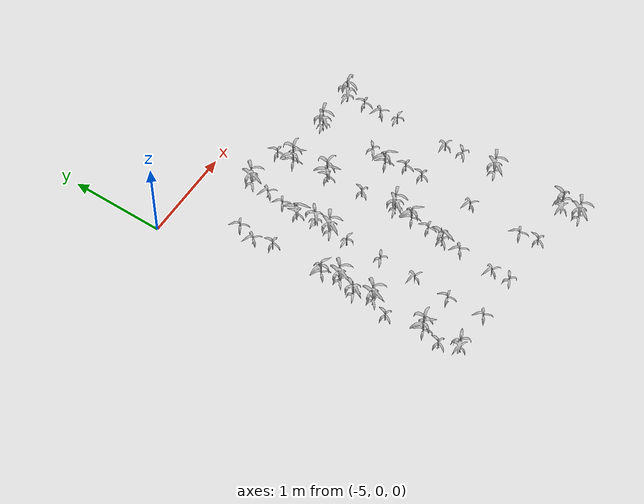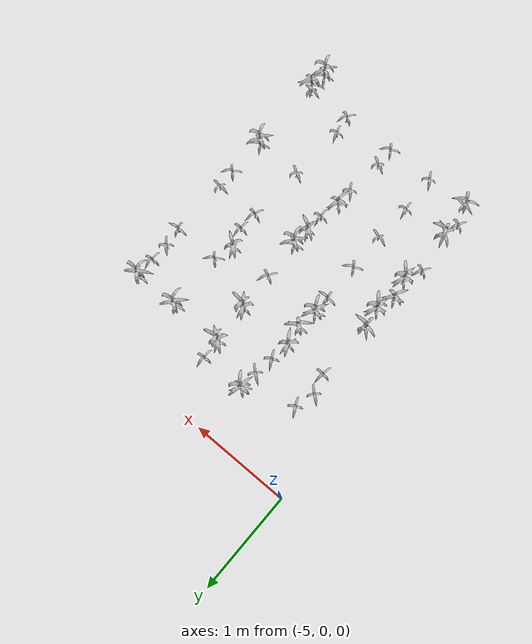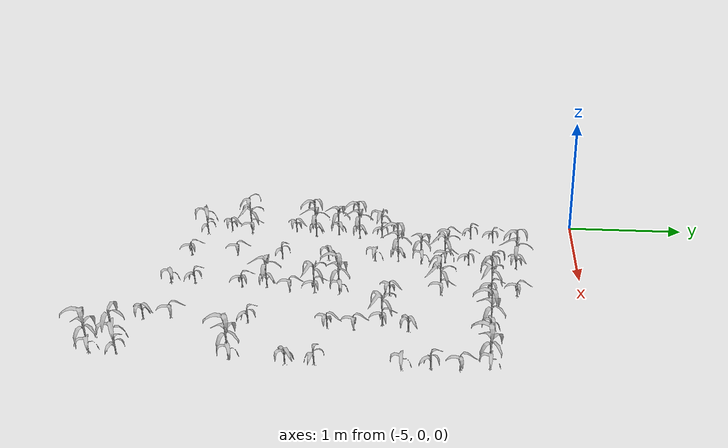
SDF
<sdf version="1.7">
 <world name="default">
  <model name="maize_-4.554123064080819_-3.2399999999999998">
   <static>1</static>
   <link name="link">
    <inertial>
     <mass>0.2</mass>
     <inertia>
      <ixx>0.166667</ixx>
      <ixy>0</ixy>
      <ixz>0</ixz>
      <iyy>0.166667</iyy>
      <iyz>0</iyz>
      <izz>0.166667</izz>
     </inertia>
    </inertial>
    <collision name="collision">
     <geometry><mesh><uri>model://corn_4/meshes/corn.dae</uri><scale>0.25 0.25 0.25</scale></mesh></geometry>
     <surface>
      <friction><ode><mu>0</mu><mu2>0</mu2></ode></friction>
      <contact><ode><kp>0</kp><kd>0</kd><max_vel>0</max_vel><min_depth>0.002</min_depth></ode></contact>
     </surface>
    </collision>
    <visual name="visual">
     <geometry><mesh><uri>model://corn_4/meshes/corn.dae</uri><scale>0.25 0.25 0.25</scale></mesh></geometry>
    </visual>
    <velocity_decay><linear>0</linear><angular>0</angular></velocity_decay>
   </link>
   <pose>-4.55412 -3.24 0.05 0 -0 2.99477</pose>
  </model>
  <model name="maize_-4.629698592727202_-3.045">
   <static>1</static>
   <link name="link">
    <inertial>
     <mass>0.2</mass>
     <inertia>
      <ixx>0.166667</ixx>
      <ixy>0</ixy>
      <ixz>0</ixz>
      <iyy>0.166667</iyy>
      <iyz>0</iyz>
      <izz>0.166667</izz>
     </inertia>
    </inertial>
    <collision name="collision">
     <geometry><mesh><uri>model://corn_3/meshes/corn.dae</uri><scale>0.25 0.25 0.25</scale></mesh></geometry>
     <surface>
      <friction><ode><mu>0</mu><mu2>0</mu2></ode></friction>
      <contact><ode><kp>0</kp><kd>0</kd><max_vel>0</max_vel><min_depth>0.002</min_depth></ode></contact>
     </surface>
    </collision>
    <visual name="visual">
     <geometry><mesh><uri>model://corn_3/meshes/corn.dae</uri><scale>0.25 0.25 0.25</scale></mesh></geometry>
    </visual>
    <velocity_decay><linear>0</linear><angular>0</angular></velocity_decay>
   </link>
   <pose>-4.6297 -3.045 0.05 0 -0 1.2091</pose>
  </model>
  <model name="maize_-4.592387539115253_-2.8499999999999996">
   <static>1</static>
   <link name="link">
    <inertial>
     <mass>0.2</mass>
     <inertia>
      <ixx>0.166667</ixx>
      <ixy>0</ixy>
      <ixz>0</ixz>
      <iyy>0.166667</iyy>
      <iyz>0</iyz>
      <izz>0.166667</izz>
     </inertia>
    </inertial>
    <collision name="collision">
     <geometry><mesh><uri>model://corn_5/meshes/corn.dae</uri><scale>0.25 0.25 0.25</scale></mesh></geometry>
     <surface>
      <friction><ode><mu>0</mu><mu2>0</mu2></ode></friction>
      <contact><ode><kp>0</kp><kd>0</kd><max_vel>0</max_vel><min_depth>0.002</min_depth></ode></contact>
     </surface>
    </collision>
    <visual name="visual">
     <geometry><mesh><uri>model://corn_5/meshes/corn.dae</uri><scale>0.25 0.25 0.25</scale></mesh></geometry>
    </visual>
    <velocity_decay><linear>0</linear><angular>0</angular></velocity_decay>
   </link>
   <pose>-4.59239 -2.85 0.05 0 -0 1.94751</pose>
  </model>
  <model name="maize_-4.649728887082645_-2.46">
   <static>1</static>
   <link name="link">
    <inertial>
     <mass>0.2</mass>
     <inertia>
      <ixx>0.166667</ixx>
      <ixy>0</ixy>
      <ixz>0</ixz>
      <iyy>0.166667</iyy>
      <iyz>0</iyz>
      <izz>0.166667</izz>
     </inertia>
    </inertial>
    <collision name="collision">
     <geometry><mesh><uri>model://corn_3/meshes/corn.dae</uri><scale>0.25 0.25 0.25</scale></mesh></geometry>
     <surface>
      <friction><ode><mu>0</mu><mu2>0</mu2></ode></friction>
      <contact><ode><kp>0</kp><kd>0</kd><max_vel>0</max_vel><min_depth>0.002</min_depth></ode></contact>
     </surface>
    </collision>
    <visual name="visual">
     <geometry><mesh><uri>model://corn_3/meshes/corn.dae</uri><scale>0.25 0.25 0.25</scale></mesh></geometry>
    </visual>
    <velocity_decay><linear>0</linear><angular>0</angular></velocity_decay>
   </link>
   <pose>-4.64973 -2.46 0.05 0 -0 1.15496</pose>
  </model>
  <model name="maize_-4.5740912913957406_-2.2649999999999997">
   <static>1</static>
   <link name="link">
    <inertial>
     <mass>0.2</mass>
     <inertia>
      <ixx>0.166667</ixx>
      <ixy>0</ixy>
      <ixz>0</ixz>
      <iyy>0.166667</iyy>
      <iyz>0</iyz>
      <izz>0.166667</izz>
     </inertia>
    </inertial>
    <collision name="collision">
     <geometry><mesh><uri>model://corn_5/meshes/corn.dae</uri><scale>0.25 0.25 0.25</scale></mesh></geometry>
     <surface>
      <friction><ode><mu>0</mu><mu2>0</mu2></ode></friction>
      <contact><ode><kp>0</kp><kd>0</kd><max_vel>0</max_vel><min_depth>0.002</min_depth></ode></contact>
     </surface>
    </collision>
    <visual name="visual">
     <geometry><mesh><uri>model://corn_5/meshes/corn.dae</uri><scale>0.25 0.25 0.25</scale></mesh></geometry>
    </visual>
    <velocity_decay><linear>0</linear><angular>0</angular></velocity_decay>
   </link>
   <pose>-4.57409 -2.265 0.05 0 -0 0.887421</pose>
  </model>
  <model name="maize_-4.6180942505716365_-2.07">
   <static>1</static>
   <link name="link">
    <inertial>
     <mass>0.2</mass>
     <inertia>
      <ixx>0.166667</ixx>
      <ixy>0</ixy>
      <ixz>0</ixz>
      <iyy>0.166667</iyy>
      <iyz>0</iyz>
      <izz>0.166667</izz>
     </inertia>
    </inertial>
    <collision name="collision">
     <geometry><mesh><uri>model://corn_4/meshes/corn.dae</uri><scale>0.25 0.25 0.25</scale></mesh></geometry>
     <surface>
      <friction><ode><mu>0</mu><mu2>0</mu2></ode></friction>
      <contact><ode><kp>0</kp><kd>0</kd><max_vel>0</max_vel><min_depth>0.002</min_depth></ode></contact>
     </surface>
    </collision>
    <visual name="visual">
     <geometry><mesh><uri>model://corn_4/meshes/corn.dae</uri><scale>0.25 0.25 0.25</scale></mesh></geometry>
    </visual>
    <velocity_decay><linear>0</linear><angular>0</angular></velocity_decay>
   </link>
   <pose>-4.61809 -2.07 0.05 0 -0 0.544141</pose>
  </model>
  <model name="maize_-4.561572440521808_-1.8749999999999996">
   <static>1</static>
   <link name="link">
    <inertial>
     <mass>0.2</mass>
     <inertia>
      <ixx>0.166667</ixx>
      <ixy>0</ixy>
      <ixz>0</ixz>
      <iyy>0.166667</iyy>
      <iyz>0</iyz>
      <izz>0.166667</izz>
     </inertia>
    </inertial>
    <collision name="collision">
     <geometry><mesh><uri>model://corn_5/meshes/corn.dae</uri><scale>0.25 0.25 0.25</scale></mesh></geometry>
     <surface>
      <friction><ode><mu>0</mu><mu2>0</mu2></ode></friction>
      <contact><ode><kp>0</kp><kd>0</kd><max_vel>0</max_vel><min_depth>0.002</min_depth></ode></contact>
     </surface>
    </collision>
    <visual name="visual">
     <geometry><mesh><uri>model://corn_5/meshes/corn.dae</uri><scale>0.25 0.25 0.25</scale></mesh></geometry>
    </visual>
    <velocity_decay><linear>0</linear><angular>0</angular></velocity_decay>
   </link>
   <pose>-4.56157 -1.875 0.05 0 -0 0.807467</pose>
  </model>
  <model name="maize_-4.591006561654498_-1.6799999999999997">
   <static>1</static>
   <link name="link">
    <inertial>
     <mass>0.2</mass>
     <inertia>
      <ixx>0.166667</ixx>
      <ixy>0</ixy>
      <ixz>0</ixz>
      <iyy>0.166667</iyy>
      <iyz>0</iyz>
      <izz>0.166667</izz>
     </inertia>
    </inertial>
    <collision name="collision">
     <geometry><mesh><uri>model://corn_4/meshes/corn.dae</uri><scale>0.25 0.25 0.25</scale></mesh></geometry>
     <surface>
      <friction><ode><mu>0</mu><mu2>0</mu2></ode></friction>
      <contact><ode><kp>0</kp><kd>0</kd><max_vel>0</max_vel><min_depth>0.002</min_depth></ode></contact>
     </surface>
    </collision>
    <visual name="visual">
     <geometry><mesh><uri>model://corn_4/meshes/corn.dae</uri><scale>0.25 0.25 0.25</scale></mesh></geometry>
    </visual>
    <velocity_decay><linear>0</linear><angular>0</angular></velocity_decay>
   </link>
   <pose>-4.59101 -1.68 0.05 0 -0 2.39519</pose>
  </model>
  <model name="maize_-4.568949534493869_-1.0949999999999998">
   <static>1</static>
   <link name="link">
    <inertial>
     <mass>0.2</mass>
     <inertia>
      <ixx>0.166667</ixx>
      <ixy>0</ixy>
      <ixz>0</ixz>
      <iyy>0.166667</iyy>
      <iyz>0</iyz>
      <izz>0.166667</izz>
     </inertia>
    </inertial>
    <collision name="collision">
     <geometry><mesh><uri>model://corn_3/meshes/corn.dae</uri><scale>0.25 0.25 0.25</scale></mesh></geometry>
     <surface>
      <friction><ode><mu>0</mu><mu2>0</mu2></ode></friction>
      <contact><ode><kp>0</kp><kd>0</kd><max_vel>0</max_vel><min_depth>0.002</min_depth></ode></contact>
     </surface>
    </collision>
    <visual name="visual">
     <geometry><mesh><uri>model://corn_3/meshes/corn.dae</uri><scale>0.25 0.25 0.25</scale></mesh></geometry>
    </visual>
    <velocity_decay><linear>0</linear><angular>0</angular></velocity_decay>
   </link>
   <pose>-4.56895 -1.095 0.05 0 -0 1.52543</pose>
  </model>
  <model name="maize_-4.627686719818913_-0.8999999999999995">
   <static>1</static>
   <link name="link">
    <inertial>
     <mass>0.2</mass>
     <inertia>
      <ixx>0.166667</ixx>
      <ixy>0</ixy>
      <ixz>0</ixz>
      <iyy>0.166667</iyy>
      <iyz>0</iyz>
      <izz>0.166667</izz>
     </inertia>
    </inertial>
    <collision name="collision">
     <geometry><mesh><uri>model://corn_3/meshes/corn.dae</uri><scale>0.25 0.25 0.25</scale></mesh></geometry>
     <surface>
      <friction><ode><mu>0</mu><mu2>0</mu2></ode></friction>
      <contact><ode><kp>0</kp><kd>0</kd><max_vel>0</max_vel><min_depth>0.002</min_depth></ode></contact>
     </surface>
    </collision>
    <visual name="visual">
     <geometry><mesh><uri>model://corn_3/meshes/corn.dae</uri><scale>0.25 0.25 0.25</scale></mesh></geometry>
    </visual>
    <velocity_decay><linear>0</linear><angular>0</angular></velocity_decay>
   </link>
   <pose>-4.62769 -0.9 0.05 0 -0 2.48654</pose>
  </model>
  <model name="maize_-4.568834103158_-0.7050000000000001">
   <static>1</static>
   <link name="link">
    <inertial>
     <mass>0.2</mass>
     <inertia>
      <ixx>0.166667</ixx>
      <ixy>0</ixy>
      <ixz>0</ixz>
      <iyy>0.166667</iyy>
      <iyz>0</iyz>
      <izz>0.166667</izz>
     </inertia>
    </inertial>
    <collision name="collision">
     <geometry><mesh><uri>model://corn_3/meshes/corn.dae</uri><scale>0.25 0.25 0.25</scale></mesh></geometry>
     <surface>
      <friction><ode><mu>0</mu><mu2>0</mu2></ode></friction>
      <contact><ode><kp>0</kp><kd>0</kd><max_vel>0</max_vel><min_depth>0.002</min_depth></ode></contact>
     </surface>
    </collision>
    <visual name="visual">
     <geometry><mesh><uri>model://corn_3/meshes/corn.dae</uri><scale>0.25 0.25 0.25</scale></mesh></geometry>
    </visual>
    <velocity_decay><linear>0</linear><angular>0</angular></velocity_decay>
   </link>
   <pose>-4.56883 -0.705 0.05 0 -0 2.10942</pose>
  </model>
  <model name="maize_-4.128840365984564_-3.2399999999999998">
   <static>1</static>
   <link name="link">
    <inertial>
     <mass>0.2</mass>
     <inertia>
      <ixx>0.166667</ixx>
      <ixy>0</ixy>
      <ixz>0</ixz>
      <iyy>0.166667</iyy>
      <iyz>0</iyz>
      <izz>0.166667</izz>
     </inertia>
    </inertial>
    <collision name="collision">
     <geometry><mesh><uri>model://corn_3/meshes/corn.dae</uri><scale>0.25 0.25 0.25</scale></mesh></geometry>
     <surface>
      <friction><ode><mu>0</mu><mu2>0</mu2></ode></friction>
      <contact><ode><kp>0</kp><kd>0</kd><max_vel>0</max_vel><min_depth>0.002</min_depth></ode></contact>
     </surface>
    </collision>
    <visual name="visual">
     <geometry><mesh><uri>model://corn_3/meshes/corn.dae</uri><scale>0.25 0.25 0.25</scale></mesh></geometry>
    </visual>
    <velocity_decay><linear>0</linear><angular>0</angular></velocity_decay>
   </link>
   <pose>-4.12884 -3.24 0.05 0 -0 2.16025</pose>
  </model>
  <model name="maize_-4.146659196533899_-2.8499999999999996">
   <static>1</static>
   <link name="link">
    <inertial>
     <mass>0.2</mass>
     <inertia>
      <ixx>0.166667</ixx>
      <ixy>0</ixy>
      <ixz>0</ixz>
      <iyy>0.166667</iyy>
      <iyz>0</iyz>
      <izz>0.166667</izz>
     </inertia>
    </inertial>
    <collision name="collision">
     <geometry><mesh><uri>model://corn_3/meshes/corn.dae</uri><scale>0.25 0.25 0.25</scale></mesh></geometry>
     <surface>
      <friction><ode><mu>0</mu><mu2>0</mu2></ode></friction>
      <contact><ode><kp>0</kp><kd>0</kd><max_vel>0</max_vel><min_depth>0.002</min_depth></ode></contact>
     </surface>
    </collision>
    <visual name="visual">
     <geometry><mesh><uri>model://corn_3/meshes/corn.dae</uri><scale>0.25 0.25 0.25</scale></mesh></geometry>
    </visual>
    <velocity_decay><linear>0</linear><angular>0</angular></velocity_decay>
   </link>
   <pose>-4.14666 -2.85 0.05 0 -0 1.79222</pose>
  </model>
  <model name="maize_-4.123361024588582_-2.46">
   <static>1</static>
   <link name="link">
    <inertial>
     <mass>0.2</mass>
     <inertia>
      <ixx>0.166667</ixx>
      <ixy>0</ixy>
      <ixz>0</ixz>
      <iyy>0.166667</iyy>
      <iyz>0</iyz>
      <izz>0.166667</izz>
     </inertia>
    </inertial>
    <collision name="collision">
     <geometry><mesh><uri>model://corn_3/meshes/corn.dae</uri><scale>0.25 0.25 0.25</scale></mesh></geometry>
     <surface>
      <friction><ode><mu>0</mu><mu2>0</mu2></ode></friction>
      <contact><ode><kp>0</kp><kd>0</kd><max_vel>0</max_vel><min_depth>0.002</min_depth></ode></contact>
     </surface>
    </collision>
    <visual name="visual">
     <geometry><mesh><uri>model://corn_3/meshes/corn.dae</uri><scale>0.25 0.25 0.25</scale></mesh></geometry>
    </visual>
    <velocity_decay><linear>0</linear><angular>0</angular></velocity_decay>
   </link>
   <pose>-4.12336 -2.46 0.05 0 -0 2.8729</pose>
  </model>
  <model name="maize_-4.131538018411101_-2.07">
   <static>1</static>
   <link name="link">
    <inertial>
     <mass>0.2</mass>
     <inertia>
      <ixx>0.166667</ixx>
      <ixy>0</ixy>
      <ixz>0</ixz>
      <iyy>0.166667</iyy>
      <iyz>0</iyz>
      <izz>0.166667</izz>
     </inertia>
    </inertial>
    <collision name="collision">
     <geometry><mesh><uri>model://corn_3/meshes/corn.dae</uri><scale>0.25 0.25 0.25</scale></mesh></geometry>
     <surface>
      <friction><ode><mu>0</mu><mu2>0</mu2></ode></friction>
      <contact><ode><kp>0</kp><kd>0</kd><max_vel>0</max_vel><min_depth>0.002</min_depth></ode></contact>
     </surface>
    </collision>
    <visual name="visual">
     <geometry><mesh><uri>model://corn_3/meshes/corn.dae</uri><scale>0.25 0.25 0.25</scale></mesh></geometry>
    </visual>
    <velocity_decay><linear>0</linear><angular>0</angular></velocity_decay>
   </link>
   <pose>-4.13154 -2.07 0.05 0 -0 0.542557</pose>
  </model>
  <model name="maize_-4.137539408709481_-1.6799999999999997">
   <static>1</static>
   <link name="link">
    <inertial>
     <mass>0.2</mass>
     <inertia>
      <ixx>0.166667</ixx>
      <ixy>0</ixy>
      <ixz>0</ixz>
      <iyy>0.166667</iyy>
      <iyz>0</iyz>
      <izz>0.166667</izz>
     </inertia>
    </inertial>
    <collision name="collision">
     <geometry><mesh><uri>model://corn_3/meshes/corn.dae</uri><scale>0.25 0.25 0.25</scale></mesh></geometry>
     <surface>
      <friction><ode><mu>0</mu><mu2>0</mu2></ode></friction>
      <contact><ode><kp>0</kp><kd>0</kd><max_vel>0</max_vel><min_depth>0.002</min_depth></ode></contact>
     </surface>
    </collision>
    <visual name="visual">
     <geometry><mesh><uri>model://corn_3/meshes/corn.dae</uri><scale>0.25 0.25 0.25</scale></mesh></geometry>
    </visual>
    <velocity_decay><linear>0</linear><angular>0</angular></velocity_decay>
   </link>
   <pose>-4.13754 -1.68 0.05 0 -0 0.031738</pose>
  </model>
  <model name="maize_-4.144469408775948_-1.4849999999999999">
   <static>1</static>
   <link name="link">
    <inertial>
     <mass>0.2</mass>
     <inertia>
      <ixx>0.166667</ixx>
      <ixy>0</ixy>
      <ixz>0</ixz>
      <iyy>0.166667</iyy>
      <iyz>0</iyz>
      <izz>0.166667</izz>
     </inertia>
    </inertial>
    <collision name="collision">
     <geometry><mesh><uri>model://corn_5/meshes/corn.dae</uri><scale>0.25 0.25 0.25</scale></mesh></geometry>
     <surface>
      <friction><ode><mu>0</mu><mu2>0</mu2></ode></friction>
      <contact><ode><kp>0</kp><kd>0</kd><max_vel>0</max_vel><min_depth>0.002</min_depth></ode></contact>
     </surface>
    </collision>
    <visual name="visual">
     <geometry><mesh><uri>model://corn_5/meshes/corn.dae</uri><scale>0.25 0.25 0.25</scale></mesh></geometry>
    </visual>
    <velocity_decay><linear>0</linear><angular>0</angular></velocity_decay>
   </link>
   <pose>-4.14447 -1.485 0.05 0 -0 0.597526</pose>
  </model>
  <model name="maize_-4.113484796082155_-1.2899999999999996">
   <static>1</static>
   <link name="link">
    <inertial>
     <mass>0.2</mass>
     <inertia>
      <ixx>0.166667</ixx>
      <ixy>0</ixy>
      <ixz>0</ixz>
      <iyy>0.166667</iyy>
      <iyz>0</iyz>
      <izz>0.166667</izz>
     </inertia>
    </inertial>
    <collision name="collision">
     <geometry><mesh><uri>model://corn_4/meshes/corn.dae</uri><scale>0.25 0.25 0.25</scale></mesh></geometry>
     <surface>
      <friction><ode><mu>0</mu><mu2>0</mu2></ode></friction>
      <contact><ode><kp>0</kp><kd>0</kd><max_vel>0</max_vel><min_depth>0.002</min_depth></ode></contact>
     </surface>
    </collision>
    <visual name="visual">
     <geometry><mesh><uri>model://corn_4/meshes/corn.dae</uri><scale>0.25 0.25 0.25</scale></mesh></geometry>
    </visual>
    <velocity_decay><linear>0</linear><angular>0</angular></velocity_decay>
   </link>
   <pose>-4.11348 -1.29 0.05 0 -0 0.181604</pose>
  </model>
  <model name="maize_-4.150162155911573_-1.0949999999999998">
   <static>1</static>
   <link name="link">
    <inertial>
     <mass>0.2</mass>
     <inertia>
      <ixx>0.166667</ixx>
      <ixy>0</ixy>
      <ixz>0</ixz>
      <iyy>0.166667</iyy>
      <iyz>0</iyz>
      <izz>0.166667</izz>
     </inertia>
    </inertial>
    <collision name="collision">
     <geometry><mesh><uri>model://corn_4/meshes/corn.dae</uri><scale>0.25 0.25 0.25</scale></mesh></geometry>
     <surface>
      <friction><ode><mu>0</mu><mu2>0</mu2></ode></friction>
      <contact><ode><kp>0</kp><kd>0</kd><max_vel>0</max_vel><min_depth>0.002</min_depth></ode></contact>
     </surface>
    </collision>
    <visual name="visual">
     <geometry><mesh><uri>model://corn_4/meshes/corn.dae</uri><scale>0.25 0.25 0.25</scale></mesh></geometry>
    </visual>
    <velocity_decay><linear>0</linear><angular>0</angular></velocity_decay>
   </link>
   <pose>-4.15016 -1.095 0.05 0 -0 1.54324</pose>
  </model>
  <model name="maize_-4.116122159934043_-0.8999999999999995">
   <static>1</static>
   <link name="link">
    <inertial>
     <mass>0.2</mass>
     <inertia>
      <ixx>0.166667</ixx>
      <ixy>0</ixy>
      <ixz>0</ixz>
      <iyy>0.166667</iyy>
      <iyz>0</iyz>
      <izz>0.166667</izz>
     </inertia>
    </inertial>
    <collision name="collision">
     <geometry><mesh><uri>model://corn_3/meshes/corn.dae</uri><scale>0.25 0.25 0.25</scale></mesh></geometry>
     <surface>
      <friction><ode><mu>0</mu><mu2>0</mu2></ode></friction>
      <contact><ode><kp>0</kp><kd>0</kd><max_vel>0</max_vel><min_depth>0.002</min_depth></ode></contact>
     </surface>
    </collision>
    <visual name="visual">
     <geometry><mesh><uri>model://corn_3/meshes/corn.dae</uri><scale>0.25 0.25 0.25</scale></mesh></geometry>
    </visual>
    <velocity_decay><linear>0</linear><angular>0</angular></velocity_decay>
   </link>
   <pose>-4.11612 -0.9 0.05 0 -0 2.13242</pose>
  </model>
  <model name="maize_-4.086699787550811_-0.7050000000000001">
   <static>1</static>
   <link name="link">
    <inertial>
     <mass>0.2</mass>
     <inertia>
      <ixx>0.166667</ixx>
      <ixy>0</ixy>
      <ixz>0</ixz>
      <iyy>0.166667</iyy>
      <iyz>0</iyz>
      <izz>0.166667</izz>
     </inertia>
    </inertial>
    <collision name="collision">
     <geometry><mesh><uri>model://corn_3/meshes/corn.dae</uri><scale>0.25 0.25 0.25</scale></mesh></geometry>
     <surface>
      <friction><ode><mu>0</mu><mu2>0</mu2></ode></friction>
      <contact><ode><kp>0</kp><kd>0</kd><max_vel>0</max_vel><min_depth>0.002</min_depth></ode></contact>
     </surface>
    </collision>
    <visual name="visual">
     <geometry><mesh><uri>model://corn_3/meshes/corn.dae</uri><scale>0.25 0.25 0.25</scale></mesh></geometry>
    </visual>
    <velocity_decay><linear>0</linear><angular>0</angular></velocity_decay>
   </link>
   <pose>-4.0867 -0.705 0.05 0 -0 2.50821</pose>
  </model>
  <model name="maize_-4.088523324037846_-0.5099999999999998">
   <static>1</static>
   <link name="link">
    <inertial>
     <mass>0.2</mass>
     <inertia>
      <ixx>0.166667</ixx>
      <ixy>0</ixy>
      <ixz>0</ixz>
      <iyy>0.166667</iyy>
      <iyz>0</iyz>
      <izz>0.166667</izz>
     </inertia>
    </inertial>
    <collision name="collision">
     <geometry><mesh><uri>model://corn_5/meshes/corn.dae</uri><scale>0.25 0.25 0.25</scale></mesh></geometry>
     <surface>
      <friction><ode><mu>0</mu><mu2>0</mu2></ode></friction>
      <contact><ode><kp>0</kp><kd>0</kd><max_vel>0</max_vel><min_depth>0.002</min_depth></ode></contact>
     </surface>
    </collision>
    <visual name="visual">
     <geometry><mesh><uri>model://corn_5/meshes/corn.dae</uri><scale>0.25 0.25 0.25</scale></mesh></geometry>
    </visual>
    <velocity_decay><linear>0</linear><angular>0</angular></velocity_decay>
   </link>
   <pose>-4.08852 -0.51 0.05 0 -0 0.835994</pose>
  </model>
  <model name="maize_-3.64406040287367_-3.2399999999999998">
   <static>1</static>
   <link name="link">
    <inertial>
     <mass>0.2</mass>
     <inertia>
      <ixx>0.166667</ixx>
      <ixy>0</ixy>
      <ixz>0</ixz>
      <iyy>0.166667</iyy>
      <iyz>0</iyz>
      <izz>0.166667</izz>
     </inertia>
    </inertial>
    <collision name="collision">
     <geometry><mesh><uri>model://corn_3/meshes/corn.dae</uri><scale>0.25 0.25 0.25</scale></mesh></geometry>
     <surface>
      <friction><ode><mu>0</mu><mu2>0</mu2></ode></friction>
      <contact><ode><kp>0</kp><kd>0</kd><max_vel>0</max_vel><min_depth>0.002</min_depth></ode></contact>
     </surface>
    </collision>
    <visual name="visual">
     <geometry><mesh><uri>model://corn_3/meshes/corn.dae</uri><scale>0.25 0.25 0.25</scale></mesh></geometry>
    </visual>
    <velocity_decay><linear>0</linear><angular>0</angular></velocity_decay>
   </link>
   <pose>-3.64406 -3.24 0.05 0 -0 0.576955</pose>
  </model>
  <model name="maize_-3.64586170117618_-3.045">
   <static>1</static>
   <link name="link">
    <inertial>
     <mass>0.2</mass>
     <inertia>
      <ixx>0.166667</ixx>
      <ixy>0</ixy>
      <ixz>0</ixz>
      <iyy>0.166667</iyy>
      <iyz>0</iyz>
      <izz>0.166667</izz>
     </inertia>
    </inertial>
    <collision name="collision">
     <geometry><mesh><uri>model://corn_3/meshes/corn.dae</uri><scale>0.25 0.25 0.25</scale></mesh></geometry>
     <surface>
      <friction><ode><mu>0</mu><mu2>0</mu2></ode></friction>
      <contact><ode><kp>0</kp><kd>0</kd><max_vel>0</max_vel><min_depth>0.002</min_depth></ode></contact>
     </surface>
    </collision>
    <visual name="visual">
     <geometry><mesh><uri>model://corn_3/meshes/corn.dae</uri><scale>0.25 0.25 0.25</scale></mesh></geometry>
    </visual>
    <velocity_decay><linear>0</linear><angular>0</angular></velocity_decay>
   </link>
   <pose>-3.64586 -3.045 0.05 0 -0 2.67093</pose>
  </model>
  <model name="maize_-3.612742289568768_-2.655">
   <static>1</static>
   <link name="link">
    <inertial>
     <mass>0.2</mass>
     <inertia>
      <ixx>0.166667</ixx>
      <ixy>0</ixy>
      <ixz>0</ixz>
      <iyy>0.166667</iyy>
      <iyz>0</iyz>
      <izz>0.166667</izz>
     </inertia>
    </inertial>
    <collision name="collision">
     <geometry><mesh><uri>model://corn_3/meshes/corn.dae</uri><scale>0.25 0.25 0.25</scale></mesh></geometry>
     <surface>
      <friction><ode><mu>0</mu><mu2>0</mu2></ode></friction>
      <contact><ode><kp>0</kp><kd>0</kd><max_vel>0</max_vel><min_depth>0.002</min_depth></ode></contact>
     </surface>
    </collision>
    <visual name="visual">
     <geometry><mesh><uri>model://corn_3/meshes/corn.dae</uri><scale>0.25 0.25 0.25</scale></mesh></geometry>
    </visual>
    <velocity_decay><linear>0</linear><angular>0</angular></velocity_decay>
   </link>
   <pose>-3.61274 -2.655 0.05 0 -0 2.25194</pose>
  </model>
  <model name="maize_-3.6190055257977387_-2.46">
   <static>1</static>
   <link name="link">
    <inertial>
     <mass>0.2</mass>
     <inertia>
      <ixx>0.166667</ixx>
      <ixy>0</ixy>
      <ixz>0</ixz>
      <iyy>0.166667</iyy>
      <iyz>0</iyz>
      <izz>0.166667</izz>
     </inertia>
    </inertial>
    <collision name="collision">
     <geometry><mesh><uri>model://corn_4/meshes/corn.dae</uri><scale>0.25 0.25 0.25</scale></mesh></geometry>
     <surface>
      <friction><ode><mu>0</mu><mu2>0</mu2></ode></friction>
      <contact><ode><kp>0</kp><kd>0</kd><max_vel>0</max_vel><min_depth>0.002</min_depth></ode></contact>
     </surface>
    </collision>
    <visual name="visual">
     <geometry><mesh><uri>model://corn_4/meshes/corn.dae</uri><scale>0.25 0.25 0.25</scale></mesh></geometry>
    </visual>
    <velocity_decay><linear>0</linear><angular>0</angular></velocity_decay>
   </link>
   <pose>-3.61901 -2.46 0.05 0 -0 0.920093</pose>
  </model>
  <model name="maize_-3.5663166611754686_-2.2649999999999997">
   <static>1</static>
   <link name="link">
    <inertial>
     <mass>0.2</mass>
     <inertia>
      <ixx>0.166667</ixx>
      <ixy>0</ixy>
      <ixz>0</ixz>
      <iyy>0.166667</iyy>
      <iyz>0</iyz>
      <izz>0.166667</izz>
     </inertia>
    </inertial>
    <collision name="collision">
     <geometry><mesh><uri>model://corn_3/meshes/corn.dae</uri><scale>0.25 0.25 0.25</scale></mesh></geometry>
     <surface>
      <friction><ode><mu>0</mu><mu2>0</mu2></ode></friction>
      <contact><ode><kp>0</kp><kd>0</kd><max_vel>0</max_vel><min_depth>0.002</min_depth></ode></contact>
     </surface>
    </collision>
    <visual name="visual">
     <geometry><mesh><uri>model://corn_3/meshes/corn.dae</uri><scale>0.25 0.25 0.25</scale></mesh></geometry>
    </visual>
    <velocity_decay><linear>0</linear><angular>0</angular></velocity_decay>
   </link>
   <pose>-3.56632 -2.265 0.05 0 -0 1.73481</pose>
  </model>
  <model name="maize_-3.5663136510447675_-2.07">
   <static>1</static>
   <link name="link">
    <inertial>
     <mass>0.2</mass>
     <inertia>
      <ixx>0.166667</ixx>
      <ixy>0</ixy>
      <ixz>0</ixz>
      <iyy>0.166667</iyy>
      <iyz>0</iyz>
      <izz>0.166667</izz>
     </inertia>
    </inertial>
    <collision name="collision">
     <geometry><mesh><uri>model://corn_4/meshes/corn.dae</uri><scale>0.25 0.25 0.25</scale></mesh></geometry>
     <surface>
      <friction><ode><mu>0</mu><mu2>0</mu2></ode></friction>
      <contact><ode><kp>0</kp><kd>0</kd><max_vel>0</max_vel><min_depth>0.002</min_depth></ode></contact>
     </surface>
    </collision>
    <visual name="visual">
     <geometry><mesh><uri>model://corn_4/meshes/corn.dae</uri><scale>0.25 0.25 0.25</scale></mesh></geometry>
    </visual>
    <velocity_decay><linear>0</linear><angular>0</angular></velocity_decay>
   </link>
   <pose>-3.56631 -2.07 0.05 0 -0 2.03651</pose>
  </model>
  <model name="maize_-3.559779274029766_-1.8749999999999996">
   <static>1</static>
   <link name="link">
    <inertial>
     <mass>0.2</mass>
     <inertia>
      <ixx>0.166667</ixx>
      <ixy>0</ixy>
      <ixz>0</ixz>
      <iyy>0.166667</iyy>
      <iyz>0</iyz>
      <izz>0.166667</izz>
     </inertia>
    </inertial>
    <collision name="collision">
     <geometry><mesh><uri>model://corn_5/meshes/corn.dae</uri><scale>0.25 0.25 0.25</scale></mesh></geometry>
     <surface>
      <friction><ode><mu>0</mu><mu2>0</mu2></ode></friction>
      <contact><ode><kp>0</kp><kd>0</kd><max_vel>0</max_vel><min_depth>0.002</min_depth></ode></contact>
     </surface>
    </collision>
    <visual name="visual">
     <geometry><mesh><uri>model://corn_5/meshes/corn.dae</uri><scale>0.25 0.25 0.25</scale></mesh></geometry>
    </visual>
    <velocity_decay><linear>0</linear><angular>0</angular></velocity_decay>
   </link>
   <pose>-3.55978 -1.875 0.05 0 -0 0.369658</pose>
  </model>
  <model name="maize_-3.5662004561195326_-1.4849999999999999">
   <static>1</static>
   <link name="link">
    <inertial>
     <mass>0.2</mass>
     <inertia>
      <ixx>0.166667</ixx>
      <ixy>0</ixy>
      <ixz>0</ixz>
      <iyy>0.166667</iyy>
      <iyz>0</iyz>
      <izz>0.166667</izz>
     </inertia>
    </inertial>
    <collision name="collision">
     <geometry><mesh><uri>model://corn_3/meshes/corn.dae</uri><scale>0.25 0.25 0.25</scale></mesh></geometry>
     <surface>
      <friction><ode><mu>0</mu><mu2>0</mu2></ode></friction>
      <contact><ode><kp>0</kp><kd>0</kd><max_vel>0</max_vel><min_depth>0.002</min_depth></ode></contact>
     </surface>
    </collision>
    <visual name="visual">
     <geometry><mesh><uri>model://corn_3/meshes/corn.dae</uri><scale>0.25 0.25 0.25</scale></mesh></geometry>
    </visual>
    <velocity_decay><linear>0</linear><angular>0</angular></velocity_decay>
   </link>
   <pose>-3.5662 -1.485 0.05 0 -0 1.1346</pose>
  </model>
  <model name="maize_-3.606803349828023_-1.0949999999999998">
   <static>1</static>
   <link name="link">
    <inertial>
     <mass>0.2</mass>
     <inertia>
      <ixx>0.166667</ixx>
      <ixy>0</ixy>
      <ixz>0</ixz>
      <iyy>0.166667</iyy>
      <iyz>0</iyz>
      <izz>0.166667</izz>
     </inertia>
    </inertial>
    <collision name="collision">
     <geometry><mesh><uri>model://corn_5/meshes/corn.dae</uri><scale>0.25 0.25 0.25</scale></mesh></geometry>
     <surface>
      <friction><ode><mu>0</mu><mu2>0</mu2></ode></friction>
      <contact><ode><kp>0</kp><kd>0</kd><max_vel>0</max_vel><min_depth>0.002</min_depth></ode></contact>
     </surface>
    </collision>
    <visual name="visual">
     <geometry><mesh><uri>model://corn_5/meshes/corn.dae</uri><scale>0.25 0.25 0.25</scale></mesh></geometry>
    </visual>
    <velocity_decay><linear>0</linear><angular>0</angular></velocity_decay>
   </link>
   <pose>-3.6068 -1.095 0.05 0 -0 1.64629</pose>
  </model>
  <model name="maize_-3.6355594387945613_-0.7050000000000001">
   <static>1</static>
   <link name="link">
    <inertial>
     <mass>0.2</mass>
     <inertia>
      <ixx>0.166667</ixx>
      <ixy>0</ixy>
      <ixz>0</ixz>
      <iyy>0.166667</iyy>
      <iyz>0</iyz>
      <izz>0.166667</izz>
     </inertia>
    </inertial>
    <collision name="collision">
     <geometry><mesh><uri>model://corn_5/meshes/corn.dae</uri><scale>0.25 0.25 0.25</scale></mesh></geometry>
     <surface>
      <friction><ode><mu>0</mu><mu2>0</mu2></ode></friction>
      <contact><ode><kp>0</kp><kd>0</kd><max_vel>0</max_vel><min_depth>0.002</min_depth></ode></contact>
     </surface>
    </collision>
    <visual name="visual">
     <geometry><mesh><uri>model://corn_5/meshes/corn.dae</uri><scale>0.25 0.25 0.25</scale></mesh></geometry>
    </visual>
    <velocity_decay><linear>0</linear><angular>0</angular></velocity_decay>
   </link>
   <pose>-3.63556 -0.705 0.05 0 -0 1.96417</pose>
  </model>
  <model name="maize_-3.6321546572533943_-0.5099999999999998">
   <static>1</static>
   <link name="link">
    <inertial>
     <mass>0.2</mass>
     <inertia>
      <ixx>0.166667</ixx>
      <ixy>0</ixy>
      <ixz>0</ixz>
      <iyy>0.166667</iyy>
      <iyz>0</iyz>
      <izz>0.166667</izz>
     </inertia>
    </inertial>
    <collision name="collision">
     <geometry><mesh><uri>model://corn_3/meshes/corn.dae</uri><scale>0.25 0.25 0.25</scale></mesh></geometry>
     <surface>
      <friction><ode><mu>0</mu><mu2>0</mu2></ode></friction>
      <contact><ode><kp>0</kp><kd>0</kd><max_vel>0</max_vel><min_depth>0.002</min_depth></ode></contact>
     </surface>
    </collision>
    <visual name="visual">
     <geometry><mesh><uri>model://corn_3/meshes/corn.dae</uri><scale>0.25 0.25 0.25</scale></mesh></geometry>
    </visual>
    <velocity_decay><linear>0</linear><angular>0</angular></velocity_decay>
   </link>
   <pose>-3.63216 -0.51 0.05 0 -0 1.66165</pose>
  </model>
  <model name="maize_-3.0905262473931723_-3.2399999999999998">
   <static>1</static>
   <link name="link">
    <inertial>
     <mass>0.2</mass>
     <inertia>
      <ixx>0.166667</ixx>
      <ixy>0</ixy>
      <ixz>0</ixz>
      <iyy>0.166667</iyy>
      <iyz>0</iyz>
      <izz>0.166667</izz>
     </inertia>
    </inertial>
    <collision name="collision">
     <geometry><mesh><uri>model://corn_3/meshes/corn.dae</uri><scale>0.25 0.25 0.25</scale></mesh></geometry>
     <surface>
      <friction><ode><mu>0</mu><mu2>0</mu2></ode></friction>
      <contact><ode><kp>0</kp><kd>0</kd><max_vel>0</max_vel><min_depth>0.002</min_depth></ode></contact>
     </surface>
    </collision>
    <visual name="visual">
     <geometry><mesh><uri>model://corn_3/meshes/corn.dae</uri><scale>0.25 0.25 0.25</scale></mesh></geometry>
    </visual>
    <velocity_decay><linear>0</linear><angular>0</angular></velocity_decay>
   </link>
   <pose>-3.09053 -3.24 0.05 0 -0 1.15603</pose>
  </model>
  <model name="maize_-3.121536290615178_-3.045">
   <static>1</static>
   <link name="link">
    <inertial>
     <mass>0.2</mass>
     <inertia>
      <ixx>0.166667</ixx>
      <ixy>0</ixy>
      <ixz>0</ixz>
      <iyy>0.166667</iyy>
      <iyz>0</iyz>
      <izz>0.166667</izz>
     </inertia>
    </inertial>
    <collision name="collision">
     <geometry><mesh><uri>model://corn_3/meshes/corn.dae</uri><scale>0.25 0.25 0.25</scale></mesh></geometry>
     <surface>
      <friction><ode><mu>0</mu><mu2>0</mu2></ode></friction>
      <contact><ode><kp>0</kp><kd>0</kd><max_vel>0</max_vel><min_depth>0.002</min_depth></ode></contact>
     </surface>
    </collision>
    <visual name="visual">
     <geometry><mesh><uri>model://corn_3/meshes/corn.dae</uri><scale>0.25 0.25 0.25</scale></mesh></geometry>
    </visual>
    <velocity_decay><linear>0</linear><angular>0</angular></velocity_decay>
   </link>
   <pose>-3.12154 -3.045 0.05 0 -0 1.95928</pose>
  </model>
  <model name="maize_-3.0939172813197353_-2.46">
   <static>1</static>
   <link name="link">
    <inertial>
     <mass>0.2</mass>
     <inertia>
      <ixx>0.166667</ixx>
      <ixy>0</ixy>
      <ixz>0</ixz>
      <iyy>0.166667</iyy>
      <iyz>0</iyz>
      <izz>0.166667</izz>
     </inertia>
    </inertial>
    <collision name="collision">
     <geometry><mesh><uri>model://corn_3/meshes/corn.dae</uri><scale>0.25 0.25 0.25</scale></mesh></geometry>
     <surface>
      <friction><ode><mu>0</mu><mu2>0</mu2></ode></friction>
      <contact><ode><kp>0</kp><kd>0</kd><max_vel>0</max_vel><min_depth>0.002</min_depth></ode></contact>
     </surface>
    </collision>
    <visual name="visual">
     <geometry><mesh><uri>model://corn_3/meshes/corn.dae</uri><scale>0.25 0.25 0.25</scale></mesh></geometry>
    </visual>
    <velocity_decay><linear>0</linear><angular>0</angular></velocity_decay>
   </link>
   <pose>-3.09392 -2.46 0.05 0 -0 2.66667</pose>
  </model>
  <model name="maize_-3.06503813978809_-1.8749999999999996">
   <static>1</static>
   <link name="link">
    <inertial>
     <mass>0.2</mass>
     <inertia>
      <ixx>0.166667</ixx>
      <ixy>0</ixy>
      <ixz>0</ixz>
      <iyy>0.166667</iyy>
      <iyz>0</iyz>
      <izz>0.166667</izz>
     </inertia>
    </inertial>
    <collision name="collision">
     <geometry><mesh><uri>model://corn_3/meshes/corn.dae</uri><scale>0.25 0.25 0.25</scale></mesh></geometry>
     <surface>
      <friction><ode><mu>0</mu><mu2>0</mu2></ode></friction>
      <contact><ode><kp>0</kp><kd>0</kd><max_vel>0</max_vel><min_depth>0.002</min_depth></ode></contact>
     </surface>
    </collision>
    <visual name="visual">
     <geometry><mesh><uri>model://corn_3/meshes/corn.dae</uri><scale>0.25 0.25 0.25</scale></mesh></geometry>
    </visual>
    <velocity_decay><linear>0</linear><angular>0</angular></velocity_decay>
   </link>
   <pose>-3.06504 -1.875 0.05 0 -0 1.33874</pose>
  </model>
  <model name="maize_-3.055801771552486_-1.6799999999999997">
   <static>1</static>
   <link name="link">
    <inertial>
     <mass>0.2</mass>
     <inertia>
      <ixx>0.166667</ixx>
      <ixy>0</ixy>
      <ixz>0</ixz>
      <iyy>0.166667</iyy>
      <iyz>0</iyz>
      <izz>0.166667</izz>
     </inertia>
    </inertial>
    <collision name="collision">
     <geometry><mesh><uri>model://corn_3/meshes/corn.dae</uri><scale>0.25 0.25 0.25</scale></mesh></geometry>
     <surface>
      <friction><ode><mu>0</mu><mu2>0</mu2></ode></friction>
      <contact><ode><kp>0</kp><kd>0</kd><max_vel>0</max_vel><min_depth>0.002</min_depth></ode></contact>
     </surface>
    </collision>
    <visual name="visual">
     <geometry><mesh><uri>model://corn_3/meshes/corn.dae</uri><scale>0.25 0.25 0.25</scale></mesh></geometry>
    </visual>
    <velocity_decay><linear>0</linear><angular>0</angular></velocity_decay>
   </link>
   <pose>-3.0558 -1.68 0.05 0 -0 1.60435</pose>
  </model>
  <model name="maize_-3.13734050411284_-1.4849999999999999">
   <static>1</static>
   <link name="link">
    <inertial>
     <mass>0.2</mass>
     <inertia>
      <ixx>0.166667</ixx>
      <ixy>0</ixy>
      <ixz>0</ixz>
      <iyy>0.166667</iyy>
      <iyz>0</iyz>
      <izz>0.166667</izz>
     </inertia>
    </inertial>
    <collision name="collision">
     <geometry><mesh><uri>model://corn_4/meshes/corn.dae</uri><scale>0.25 0.25 0.25</scale></mesh></geometry>
     <surface>
      <friction><ode><mu>0</mu><mu2>0</mu2></ode></friction>
      <contact><ode><kp>0</kp><kd>0</kd><max_vel>0</max_vel><min_depth>0.002</min_depth></ode></contact>
     </surface>
    </collision>
    <visual name="visual">
     <geometry><mesh><uri>model://corn_4/meshes/corn.dae</uri><scale>0.25 0.25 0.25</scale></mesh></geometry>
    </visual>
    <velocity_decay><linear>0</linear><angular>0</angular></velocity_decay>
   </link>
   <pose>-3.13734 -1.485 0.05 0 -0 1.9319</pose>
  </model>
  <model name="maize_-3.0668359615742085_-1.2899999999999996">
   <static>1</static>
   <link name="link">
    <inertial>
     <mass>0.2</mass>
     <inertia>
      <ixx>0.166667</ixx>
      <ixy>0</ixy>
      <ixz>0</ixz>
      <iyy>0.166667</iyy>
      <iyz>0</iyz>
      <izz>0.166667</izz>
     </inertia>
    </inertial>
    <collision name="collision">
     <geometry><mesh><uri>model://corn_3/meshes/corn.dae</uri><scale>0.25 0.25 0.25</scale></mesh></geometry>
     <surface>
      <friction><ode><mu>0</mu><mu2>0</mu2></ode></friction>
      <contact><ode><kp>0</kp><kd>0</kd><max_vel>0</max_vel><min_depth>0.002</min_depth></ode></contact>
     </surface>
    </collision>
    <visual name="visual">
     <geometry><mesh><uri>model://corn_3/meshes/corn.dae</uri><scale>0.25 0.25 0.25</scale></mesh></geometry>
    </visual>
    <velocity_decay><linear>0</linear><angular>0</angular></velocity_decay>
   </link>
   <pose>-3.06684 -1.29 0.05 0 -0 0.712496</pose>
  </model>
  <model name="maize_-3.0965430844606603_-0.7050000000000001">
   <static>1</static>
   <link name="link">
    <inertial>
     <mass>0.2</mass>
     <inertia>
      <ixx>0.166667</ixx>
      <ixy>0</ixy>
      <ixz>0</ixz>
      <iyy>0.166667</iyy>
      <iyz>0</iyz>
      <izz>0.166667</izz>
     </inertia>
    </inertial>
    <collision name="collision">
     <geometry><mesh><uri>model://corn_5/meshes/corn.dae</uri><scale>0.25 0.25 0.25</scale></mesh></geometry>
     <surface>
      <friction><ode><mu>0</mu><mu2>0</mu2></ode></friction>
      <contact><ode><kp>0</kp><kd>0</kd><max_vel>0</max_vel><min_depth>0.002</min_depth></ode></contact>
     </surface>
    </collision>
    <visual name="visual">
     <geometry><mesh><uri>model://corn_5/meshes/corn.dae</uri><scale>0.25 0.25 0.25</scale></mesh></geometry>
    </visual>
    <velocity_decay><linear>0</linear><angular>0</angular></velocity_decay>
   </link>
   <pose>-3.09654 -0.705 0.05 0 -0 0.313173</pose>
  </model>
  <model name="maize_-2.634937035465942_-3.4349999999999996">
   <static>1</static>
   <link name="link">
    <inertial>
     <mass>0.2</mass>
     <inertia>
      <ixx>0.166667</ixx>
      <ixy>0</ixy>
      <ixz>0</ixz>
      <iyy>0.166667</iyy>
      <iyz>0</iyz>
      <izz>0.166667</izz>
     </inertia>
    </inertial>
    <collision name="collision">
     <geometry><mesh><uri>model://corn_5/meshes/corn.dae</uri><scale>0.25 0.25 0.25</scale></mesh></geometry>
     <surface>
      <friction><ode><mu>0</mu><mu2>0</mu2></ode></friction>
      <contact><ode><kp>0</kp><kd>0</kd><max_vel>0</max_vel><min_depth>0.002</min_depth></ode></contact>
     </surface>
    </collision>
    <visual name="visual">
     <geometry><mesh><uri>model://corn_5/meshes/corn.dae</uri><scale>0.25 0.25 0.25</scale></mesh></geometry>
    </visual>
    <velocity_decay><linear>0</linear><angular>0</angular></velocity_decay>
   </link>
   <pose>-2.63494 -3.435 0.05 0 -0 0.511469</pose>
  </model>
  <model name="maize_-2.631944635283344_-3.2399999999999998">
   <static>1</static>
   <link name="link">
    <inertial>
     <mass>0.2</mass>
     <inertia>
      <ixx>0.166667</ixx>
      <ixy>0</ixy>
      <ixz>0</ixz>
      <iyy>0.166667</iyy>
      <iyz>0</iyz>
      <izz>0.166667</izz>
     </inertia>
    </inertial>
    <collision name="collision">
     <geometry><mesh><uri>model://corn_5/meshes/corn.dae</uri><scale>0.25 0.25 0.25</scale></mesh></geometry>
     <surface>
      <friction><ode><mu>0</mu><mu2>0</mu2></ode></friction>
      <contact><ode><kp>0</kp><kd>0</kd><max_vel>0</max_vel><min_depth>0.002</min_depth></ode></contact>
     </surface>
    </collision>
    <visual name="visual">
     <geometry><mesh><uri>model://corn_5/meshes/corn.dae</uri><scale>0.25 0.25 0.25</scale></mesh></geometry>
    </visual>
    <velocity_decay><linear>0</linear><angular>0</angular></velocity_decay>
   </link>
   <pose>-2.63194 -3.24 0.05 0 -0 3.02856</pose>
  </model>
  <model name="maize_-2.6276935637516328_-2.46">
   <static>1</static>
   <link name="link">
    <inertial>
     <mass>0.2</mass>
     <inertia>
      <ixx>0.166667</ixx>
      <ixy>0</ixy>
      <ixz>0</ixz>
      <iyy>0.166667</iyy>
      <iyz>0</iyz>
      <izz>0.166667</izz>
     </inertia>
    </inertial>
    <collision name="collision">
     <geometry><mesh><uri>model://corn_5/meshes/corn.dae</uri><scale>0.25 0.25 0.25</scale></mesh></geometry>
     <surface>
      <friction><ode><mu>0</mu><mu2>0</mu2></ode></friction>
      <contact><ode><kp>0</kp><kd>0</kd><max_vel>0</max_vel><min_depth>0.002</min_depth></ode></contact>
     </surface>
    </collision>
    <visual name="visual">
     <geometry><mesh><uri>model://corn_5/meshes/corn.dae</uri><scale>0.25 0.25 0.25</scale></mesh></geometry>
    </visual>
    <velocity_decay><linear>0</linear><angular>0</angular></velocity_decay>
   </link>
   <pose>-2.62769 -2.46 0.05 0 -0 0.484378</pose>
  </model>
  <model name="maize_-2.6034829862597744_-2.07">
   <static>1</static>
   <link name="link">
    <inertial>
     <mass>0.2</mass>
     <inertia>
      <ixx>0.166667</ixx>
      <ixy>0</ixy>
      <ixz>0</ixz>
      <iyy>0.166667</iyy>
      <iyz>0</iyz>
      <izz>0.166667</izz>
     </inertia>
    </inertial>
    <collision name="collision">
     <geometry><mesh><uri>model://corn_3/meshes/corn.dae</uri><scale>0.25 0.25 0.25</scale></mesh></geometry>
     <surface>
      <friction><ode><mu>0</mu><mu2>0</mu2></ode></friction>
      <contact><ode><kp>0</kp><kd>0</kd><max_vel>0</max_vel><min_depth>0.002</min_depth></ode></contact>
     </surface>
    </collision>
    <visual name="visual">
     <geometry><mesh><uri>model://corn_3/meshes/corn.dae</uri><scale>0.25 0.25 0.25</scale></mesh></geometry>
    </visual>
    <velocity_decay><linear>0</linear><angular>0</angular></velocity_decay>
   </link>
   <pose>-2.60348 -2.07 0.05 0 -0 0.749977</pose>
  </model>
  <model name="maize_-2.61506529713659_-1.8749999999999996">
   <static>1</static>
   <link name="link">
    <inertial>
     <mass>0.2</mass>
     <inertia>
      <ixx>0.166667</ixx>
      <ixy>0</ixy>
      <ixz>0</ixz>
      <iyy>0.166667</iyy>
      <iyz>0</iyz>
      <izz>0.166667</izz>
     </inertia>
    </inertial>
    <collision name="collision">
     <geometry><mesh><uri>model://corn_3/meshes/corn.dae</uri><scale>0.25 0.25 0.25</scale></mesh></geometry>
     <surface>
      <friction><ode><mu>0</mu><mu2>0</mu2></ode></friction>
      <contact><ode><kp>0</kp><kd>0</kd><max_vel>0</max_vel><min_depth>0.002</min_depth></ode></contact>
     </surface>
    </collision>
    <visual name="visual">
     <geometry><mesh><uri>model://corn_3/meshes/corn.dae</uri><scale>0.25 0.25 0.25</scale></mesh></geometry>
    </visual>
    <velocity_decay><linear>0</linear><angular>0</angular></velocity_decay>
   </link>
   <pose>-2.61506 -1.875 0.05 0 -0 3.06723</pose>
  </model>
  <model name="maize_-2.6026687520011382_-1.2899999999999996">
   <static>1</static>
   <link name="link">
    <inertial>
     <mass>0.2</mass>
     <inertia>
      <ixx>0.166667</ixx>
      <ixy>0</ixy>
      <ixz>0</ixz>
      <iyy>0.166667</iyy>
      <iyz>0</iyz>
      <izz>0.166667</izz>
     </inertia>
    </inertial>
    <collision name="collision">
     <geometry><mesh><uri>model://corn_3/meshes/corn.dae</uri><scale>0.25 0.25 0.25</scale></mesh></geometry>
     <surface>
      <friction><ode><mu>0</mu><mu2>0</mu2></ode></friction>
      <contact><ode><kp>0</kp><kd>0</kd><max_vel>0</max_vel><min_depth>0.002</min_depth></ode></contact>
     </surface>
    </collision>
    <visual name="visual">
     <geometry><mesh><uri>model://corn_3/meshes/corn.dae</uri><scale>0.25 0.25 0.25</scale></mesh></geometry>
    </visual>
    <velocity_decay><linear>0</linear><angular>0</angular></velocity_decay>
   </link>
   <pose>-2.60267 -1.29 0.05 0 -0 0.124853</pose>
  </model>
  <model name="maize_-2.6232469049865164_-1.0949999999999998">
   <static>1</static>
   <link name="link">
    <inertial>
     <mass>0.2</mass>
     <inertia>
      <ixx>0.166667</ixx>
      <ixy>0</ixy>
      <ixz>0</ixz>
      <iyy>0.166667</iyy>
      <iyz>0</iyz>
      <izz>0.166667</izz>
     </inertia>
    </inertial>
    <collision name="collision">
     <geometry><mesh><uri>model://corn_3/meshes/corn.dae</uri><scale>0.25 0.25 0.25</scale></mesh></geometry>
     <surface>
      <friction><ode><mu>0</mu><mu2>0</mu2></ode></friction>
      <contact><ode><kp>0</kp><kd>0</kd><max_vel>0</max_vel><min_depth>0.002</min_depth></ode></contact>
     </surface>
    </collision>
    <visual name="visual">
     <geometry><mesh><uri>model://corn_3/meshes/corn.dae</uri><scale>0.25 0.25 0.25</scale></mesh></geometry>
    </visual>
    <velocity_decay><linear>0</linear><angular>0</angular></velocity_decay>
   </link>
   <pose>-2.62325 -1.095 0.05 0 -0 2.40716</pose>
  </model>
  <model name="maize_-2.6209718232216943_-0.8999999999999995">
   <static>1</static>
   <link name="link">
    <inertial>
     <mass>0.2</mass>
     <inertia>
      <ixx>0.166667</ixx>
      <ixy>0</ixy>
      <ixz>0</ixz>
      <iyy>0.166667</iyy>
      <iyz>0</iyz>
      <izz>0.166667</izz>
     </inertia>
    </inertial>
    <collision name="collision">
     <geometry><mesh><uri>model://corn_3/meshes/corn.dae</uri><scale>0.25 0.25 0.25</scale></mesh></geometry>
     <surface>
      <friction><ode><mu>0</mu><mu2>0</mu2></ode></friction>
      <contact><ode><kp>0</kp><kd>0</kd><max_vel>0</max_vel><min_depth>0.002</min_depth></ode></contact>
     </surface>
    </collision>
    <visual name="visual">
     <geometry><mesh><uri>model://corn_3/meshes/corn.dae</uri><scale>0.25 0.25 0.25</scale></mesh></geometry>
    </visual>
    <velocity_decay><linear>0</linear><angular>0</angular></velocity_decay>
   </link>
   <pose>-2.62097 -0.9 0.05 0 -0 1.67967</pose>
  </model>
  <model name="maize_-2.645078555831828_-0.7050000000000001">
   <static>1</static>
   <link name="link">
    <inertial>
     <mass>0.2</mass>
     <inertia>
      <ixx>0.166667</ixx>
      <ixy>0</ixy>
      <ixz>0</ixz>
      <iyy>0.166667</iyy>
      <iyz>0</iyz>
      <izz>0.166667</izz>
     </inertia>
    </inertial>
    <collision name="collision">
     <geometry><mesh><uri>model://corn_5/meshes/corn.dae</uri><scale>0.25 0.25 0.25</scale></mesh></geometry>
     <surface>
      <friction><ode><mu>0</mu><mu2>0</mu2></ode></friction>
      <contact><ode><kp>0</kp><kd>0</kd><max_vel>0</max_vel><min_depth>0.002</min_depth></ode></contact>
     </surface>
    </collision>
    <visual name="visual">
     <geometry><mesh><uri>model://corn_5/meshes/corn.dae</uri><scale>0.25 0.25 0.25</scale></mesh></geometry>
    </visual>
    <velocity_decay><linear>0</linear><angular>0</angular></velocity_decay>
   </link>
   <pose>-2.64508 -0.705 0.05 0 -0 0.036812</pose>
  </model>
 </world>
</sdf>
